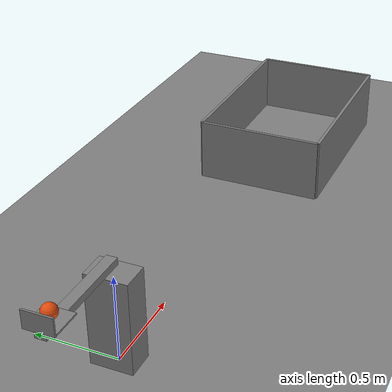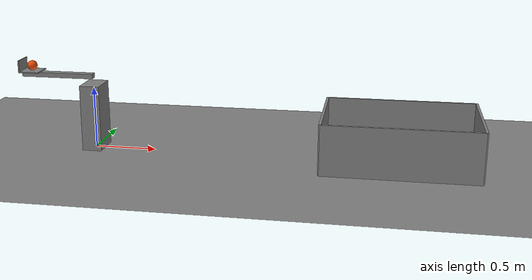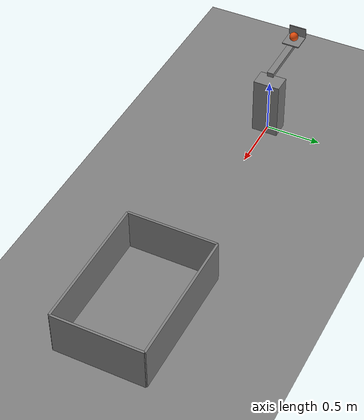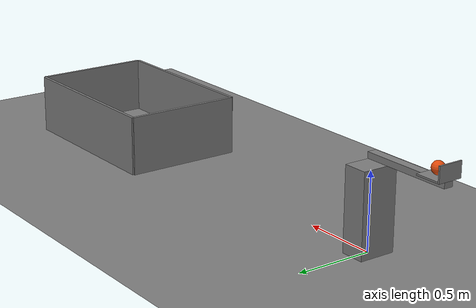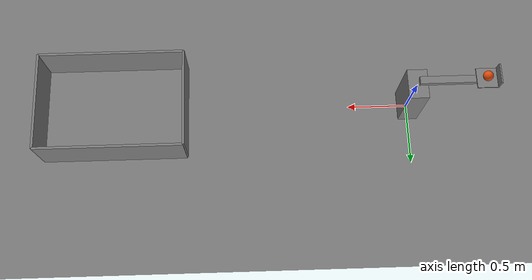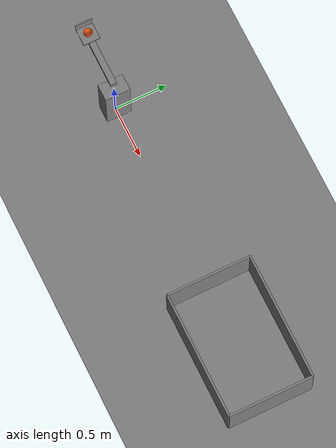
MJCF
<mujoco model="spring_catapult_into_a_bucket">
  <compiler angle="radian"/>
  <option timestep="0.002"/>
  <worldbody>
    <geom name="floor" type="plane" size="8 8 0.1" friction="0.8 0.005 0.002"/>
    <geom name="catapult_stand" type="box" pos="0 0 0.27" size="0.08 0.12 0.27"/>
    <body name="catapult" pos="0 0 0.6">
      <joint name="catapult_hinge" type="hinge" pos="0 0 0" axis="0 1 0" limited="true" range="0 0.785398" stiffness="4.2" springref="1.309" damping="0.015" armature="0.01"/>
      <geom name="catapult_arm" type="box" pos="-0.3 0 0" size="0.3 0.03 0.02" mass="0.12"/>
      <geom name="catapult_scoop_base" type="box" pos="-0.52 0 0.025" size="0.08 0.08 0.005" mass="0.02"/>
      <geom name="catapult_scoop_back" type="box" pos="-0.605 0 0.07" size="0.005 0.08 0.05" mass="0.01"/>
    </body>
    <body name="ball" pos="-0.52 0 0.67">
      <freejoint/>
      <geom name="ball" type="sphere" pos="0 0 0" size="0.04" mass="0.06" condim="6" friction="0.8 0.01 0.004" solref="0.01 1" rgba="0.9 0.3 0.05 1"/>
    </body>
    <body name="bucket">
      <geom name="bucket_base" type="box" pos="2.48 0 0.01" size="0.6 0.4 0.01"/>
      <geom name="bucket_near_wall" type="box" pos="1.88 0 0.2" size="0.01 0.4 0.2"/>
      <geom name="bucket_far_wall" type="box" pos="3.08 0 0.2" size="0.01 0.4 0.2"/>
      <geom name="bucket_left_wall" type="box" pos="2.48 0.4 0.2" size="0.6 0.01 0.2"/>
      <geom name="bucket_right_wall" type="box" pos="2.48 -0.4 0.2" size="0.6 0.01 0.2"/>
    </body>
  </worldbody>
  <keyframe>
    <key name="start" qpos="0 -0.52 0 0.67 1 0 0 0" qvel="0 0 0 0 0 0 0"/>
  </keyframe>
</mujoco>
